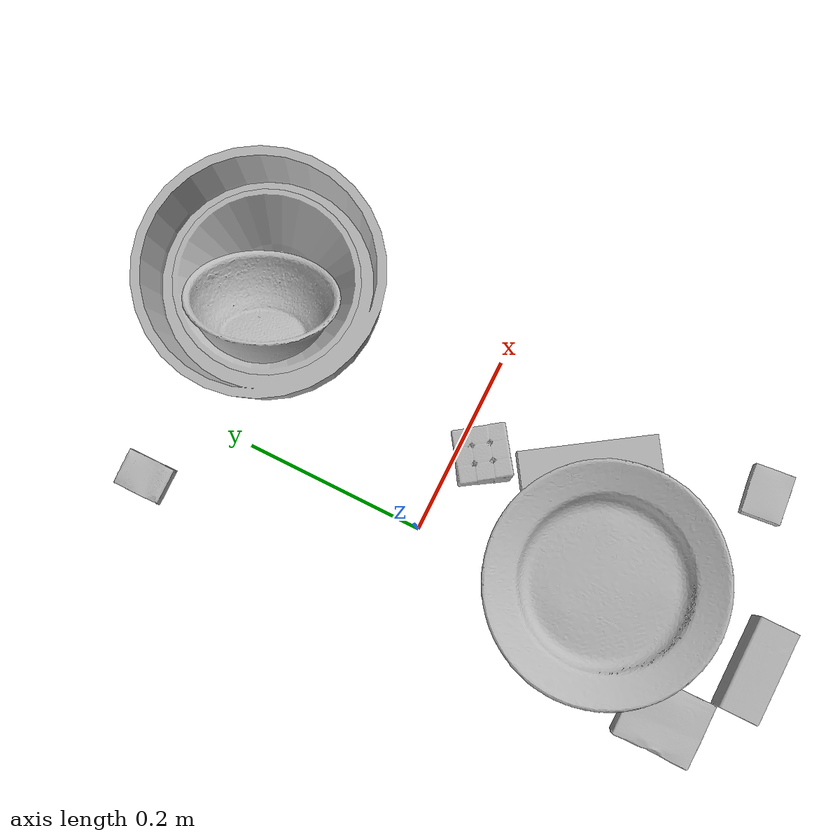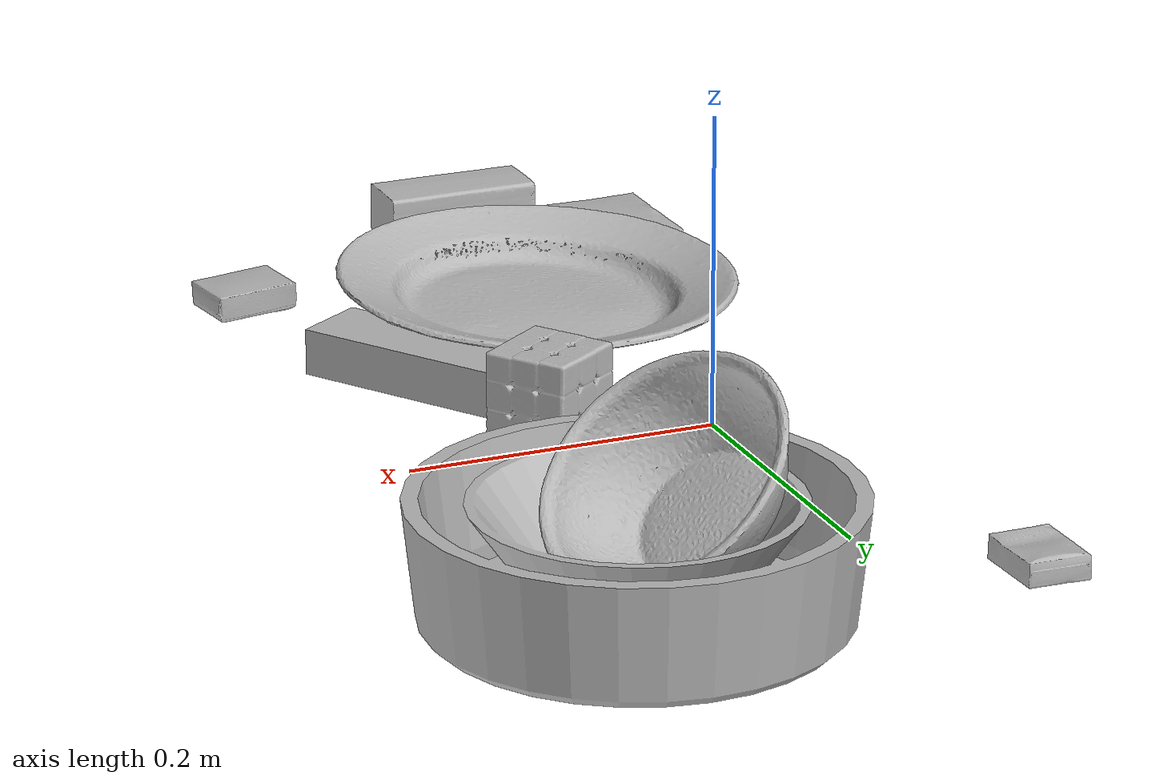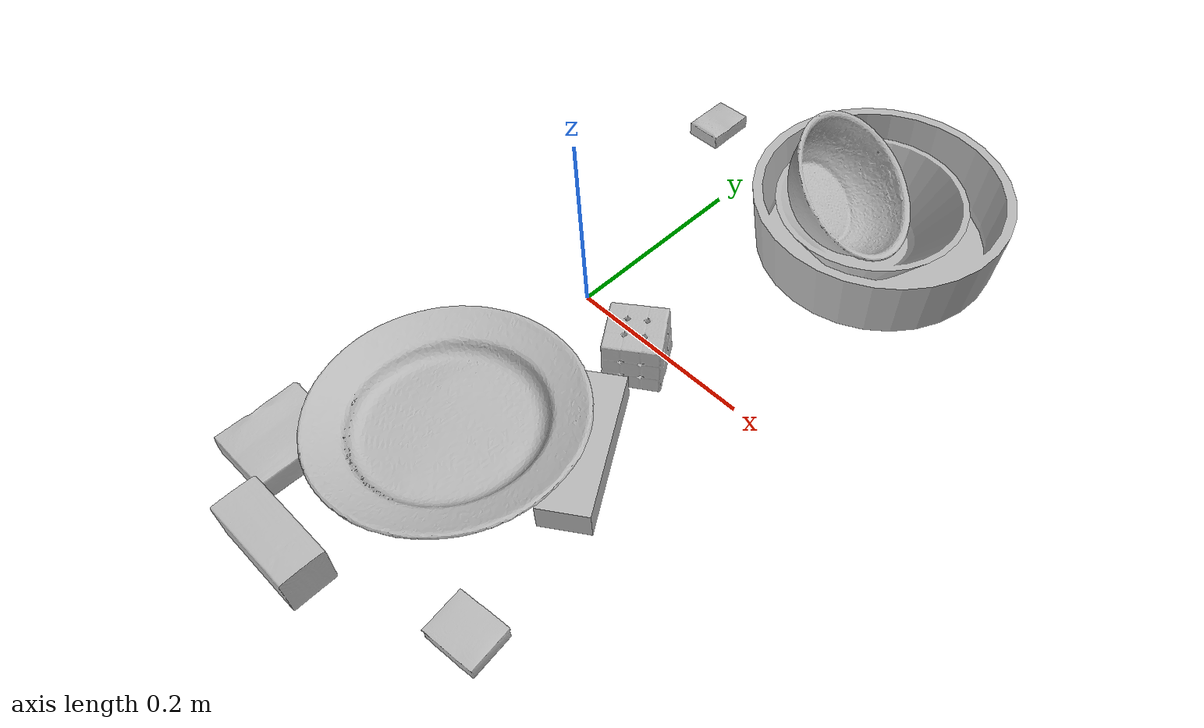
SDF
<sdf version="1.4">
  <world name="default">
    <light name="light1" type="point">
      <pose>0 0 1 0 0 0</pose>
      <diffuse>3 3 3 1</diffuse>
      <specular>3 3 3 1</specular>
    </light>
    <light name="light2" type="point">
      <pose>0 0.5 2 0 0 0</pose>
      <diffuse>1 1 1 1</diffuse>
      <specular>1 1 1 1</specular>
    </light>
    <light name="light3" type="point">
      <pose>0 0.5 2 0 0 0</pose>
      <diffuse>3 3 3 1</diffuse>
      <specular>3 3 3 1</specular>
    </light>
    <scene>
      <ambient>0.7 0.7 0.7</ambient>
    </scene>
    <model name="box1">
      <link name="link_box1">
        <collision name="default">
          <geometry>
            <mesh>
              <uri>model://pudding_box/collision_meshes/collision.obj</uri>
              <scale>0.5 0.5 0.5</scale>
            </mesh>
          </geometry>
          <surface>
            <friction>
              <ode>
                <mu>0.5</mu>
                <mu2>0.5</mu2>
              </ode>
            </friction>
          <contact>
        <ode>
            <max_vel>0</max_vel>
            <min_depth>0.0001</min_depth>
            <kp>1e8</kp>
        </ode>
    </contact></surface>
        </collision>
        <visual name="default">
          <geometry>
            <mesh>
              <uri>model://pudding_box/visual_meshes/visual.dae</uri>
              <scale>0.5 0.5 0.5</scale>
            </mesh>
          </geometry>
        </visual>
        <inertial>
          <mass>0.06043573096394539</mass>
          <pose>0.0002447410661261529 0.00040339428232982755 -0.0002594413817860186 0.005213102238104987 -0.006603800125102895 0.020079827017580043</pose>
          <inertia>
            <ixx>1.707987e-05</ixx>
            <iyy>1.1491458e-05</iyy>
            <izz>2.522289e-05</izz>
            <ixy>0</ixy>
            <ixz>0</ixz>
            <iyz>0</iyz>
          </inertia>
        </inertial>
      </link>
      <pose>0.19646835327148438 -0.31480005383491516 0.009862907230854034 0.022348466089731477 -0.01139175818973825 1.679891521976256</pose>
    </model>
    <model name="box11">
      <link name="link_box11">
        <collision name="default">
          <geometry>
            <mesh>
              <uri>model://wood_block/collision_meshes/collision.obj</uri>
              <scale>0.5 0.5 0.5</scale>
            </mesh>
          </geometry>
          <surface>
            <friction>
              <ode>
                <mu>0.5</mu>
                <mu2>0.5</mu2>
              </ode>
            </friction>
          <contact>
        <ode>
            <max_vel>0</max_vel>
            <min_depth>0.0001</min_depth>
            <kp>1e8</kp>
        </ode>
    </contact></surface>
        </collision>
        <visual name="default">
          <geometry>
            <mesh>
              <uri>model://wood_block/visual_meshes/visual.dae</uri>
              <scale>0.5 0.5 0.5</scale>
            </mesh>
          </geometry>
        </visual>
        <inertial>
          <mass>0.22556793689727783</mass>
          <pose>-2.9066577553749084e-06 -0.000285404734313488 0.00013204290007706732 -0.05220975528916272 -0.005192696013017626 -0.0068613779154948285</pose>
          <inertia>
            <ixx>7.5461e-05</ixx>
            <iyy>0.00023838133</iyy>
            <izz>0.00023748967</izz>
            <ixy>0</ixy>
            <ixz>0</ixz>
            <iyz>0</iyz>
          </inertia>
        </inertial>
      </link>
      <pose>0.024619149044156075 -0.37781691551208496 0.022629262879490852 -0.005208531390253412 0.005718745610887126 -3.136967939436268</pose>
    </model>
    <model name="box2">
      <link name="link_box2">
        <collision name="default">
          <geometry>
            <mesh>
              <uri>model://jenga/collision_meshes/collision.obj</uri>
              <scale>1.0 1.0 1.0</scale>
            </mesh>
          </geometry>
          <surface>
            <friction>
              <ode>
                <mu>0.5</mu>
                <mu2>0.5</mu2>
              </ode>
            </friction>
          <contact>
        <ode>
            <max_vel>0</max_vel>
            <min_depth>0.0001</min_depth>
            <kp>1e8</kp>
        </ode>
    </contact></surface>
        </collision>
        <visual name="default">
          <geometry>
            <mesh>
              <uri>model://jenga/visual_meshes/visual.dae</uri>
              <scale>1.0 1.0 1.0</scale>
            </mesh>
          </geometry>
        </visual>
        <inertial>
          <mass>0.2534179985523224</mass>
          <pose>-2.502856091268768e-07 -0.00010250010382151231 -4.0923401684267446e-05 0.0 -7.342154049184251e-07 0.0</pose>
          <inertia>
            <ixx>7.012692e-05</ixx>
            <iyy>0.00047517804</iyy>
            <izz>0.000507293</izz>
            <ixy>0</ixy>
            <ixz>0</ixz>
            <iyz>0</iyz>
          </inertia>
        </inertial>
      </link>
      <pose>0.13863782584667206 -0.13336753845214844 0.014999830164015293 -2.111125940131901e-05 1.1636111962023903e-07 -0.988240239857482</pose>
    </model>
    <model name="box21">
      <link name="link_box21">
        <collision name="default">
          <geometry>
            <mesh>
              <uri>model://cracker_box/collision_meshes/collision.obj</uri>
              <scale>0.25 0.25 0.25</scale>
            </mesh>
          </geometry>
          <surface>
            <friction>
              <ode>
                <mu>0.5</mu>
                <mu2>0.5</mu2>
              </ode>
            </friction>
          <contact>
        <ode>
            <max_vel>0</max_vel>
            <min_depth>0.0001</min_depth>
            <kp>1e8</kp>
        </ode>
    </contact></surface>
        </collision>
        <visual name="default">
          <geometry>
            <mesh>
              <uri>model://cracker_box/visual_meshes/visual.dae</uri>
              <scale>0.25 0.25 0.25</scale>
            </mesh>
          </geometry>
        </visual>
        <inertial>
          <mass>0.04045860841870308</mass>
          <pose>0.0002366030093980953 6.358561950037256e-05 -0.0004257383698131889 -0.0003162076898946344 -0.011106488668808423 0.0025467959335197018</pose>
          <inertia>
            <ixx>6.4317906e-06</ixx>
            <iyy>1.062015e-05</iyy>
            <izz>1.5155927e-05</izz>
            <ixy>0</ixy>
            <ixz>0</ixz>
            <iyz>0</iyz>
          </inertia>
        </inertial>
      </link>
      <pose>-0.07954631745815277 0.2853996455669403 0.009096028283238411 -0.014050569513327914 -0.005016580936899283 1.5709725450814114</pose>
    </model>
    <model name="box3">
      <link name="link_box3">
        <collision name="default">
          <geometry>
            <mesh>
              <uri>model://rubiks_cube/collision_meshes/collision.obj</uri>
              <scale>1.0 1.0 1.0</scale>
            </mesh>
          </geometry>
          <surface>
            <friction>
              <ode>
                <mu>0.5</mu>
                <mu2>0.5</mu2>
              </ode>
            </friction>
          <contact>
        <ode>
            <max_vel>0</max_vel>
            <min_depth>0.0001</min_depth>
            <kp>1e8</kp>
        </ode>
    </contact></surface>
        </collision>
        <visual name="default">
          <geometry>
            <mesh>
              <uri>model://rubiks_cube/visual_meshes/visual.dae</uri>
              <scale>1.0 1.0 1.0</scale>
            </mesh>
          </geometry>
        </visual>
        <inertial>
          <mass>0.12779320776462555</mass>
          <pose>2.6721041649580002e-05 5.2569666877388954e-05 -7.264316082000732e-06 -0.054672129212199855 -0.09814057073985563 -0.03445704008669109</pose>
          <inertia>
            <ixx>7.061434e-05</ixx>
            <iyy>7.0285016e-05</iyy>
            <izz>7.119949e-05</izz>
            <ixy>0</ixy>
            <ixz>0</ixz>
            <iyz>0</iyz>
          </inertia>
        </inertial>
      </link>
      <pose>0.09788204729557037 -0.025884011760354042 0.028678975999355316 -3.0007372070987915e-06 -8.523181530812388e-07 -0.9615336558376729</pose>
    </model>
    <model name="box31">
      <link name="link_box31">
        <collision name="default">
          <geometry>
            <mesh>
              <uri>model://gelatin_box/collision_meshes/collision.obj</uri>
              <scale>1.0 1.0 1.0</scale>
            </mesh>
          </geometry>
          <surface>
            <friction>
              <ode>
                <mu>0.5</mu>
                <mu2>0.5</mu2>
              </ode>
            </friction>
          <contact>
        <ode>
            <max_vel>0</max_vel>
            <min_depth>0.0001</min_depth>
            <kp>1e8</kp>
        </ode>
    </contact></surface>
        </collision>
        <visual name="default">
          <geometry>
            <mesh>
              <uri>model://gelatin_box/visual_meshes/visual.dae</uri>
              <scale>1.0 1.0 1.0</scale>
            </mesh>
          </geometry>
        </visual>
        <inertial>
          <mass>0.20050984621047974</mass>
          <pose>0.0004319618456065655 0.00011156872642459348 -0.00036403213744051754 -0.0010503720853528096 -0.004755817758068365 0.016440559471334753</pose>
          <inertia>
            <ixx>0.00014154361</ixx>
            <iyy>0.00010110386</iyy>
            <izz>0.0002154609</izz>
            <ixy>0</ixy>
            <ixz>0</ixz>
            <iyz>0</iyz>
          </inertia>
        </inertial>
      </link>
      <pose>-0.06362872570753098 -0.3148610591888428 0.015168371610343456 0.005585121806370587 -0.007291739285324817 3.140468566109097</pose>
    </model>
    <model name="plate1">
      <link name="link_plate1">
        <collision name="default">
          <geometry>
            <mesh>
              <uri>model://pan_tefal/collision_meshes/collision.obj</uri>
              <scale>1.0 1.0 1.0</scale>
            </mesh>
          </geometry>
          <surface>
            <friction>
              <ode>
                <mu>0.5</mu>
                <mu2>0.5</mu2>
              </ode>
            </friction>
          <contact>
        <ode>
            <max_vel>0</max_vel>
            <min_depth>0.0001</min_depth>
            <kp>1e8</kp>
        </ode>
    </contact></surface>
        </collision>
        <visual name="default">
          <geometry>
            <mesh>
              <uri>model://pan_tefal/visual_meshes/visual.dae</uri>
              <scale>1.0 1.0 1.0</scale>
            </mesh>
          </geometry>
        </visual>
        <inertial>
          <mass>0.9166961908340454</mass>
          <pose>-0.00018002631259150803 3.279098018538207e-05 -0.00851493515074253 0.0008190256602529888 -0.0003301357182707761 -0.33185348708971</pose>
          <inertia>
            <ixx>0.006327908</ixx>
            <iyy>0.006368705</iyy>
            <izz>0.01164846</izz>
            <ixy>0</ixy>
            <ixz>0</ixz>
            <iyz>0</iyz>
          </inertia>
        </inertial>
      </link>
      <pose>0.16288606822490692 0.2632300555706024 0.03792249411344528 -0.0007429334751207379 -0.0007274763358808824 1.7184153559588529</pose>
    </model>
    <model name="bowl1">
      <link name="link_bowl1">
        <collision name="default">
          <geometry>
            <mesh>
              <uri>model://bowl_a/collision_meshes/collision.obj</uri>
              <scale>1.0 1.0 1.0</scale>
            </mesh>
          </geometry>
          <surface>
            <friction>
              <ode>
                <mu>0.5</mu>
                <mu2>0.5</mu2>
              </ode>
            </friction>
          <contact>
        <ode>
            <max_vel>0</max_vel>
            <min_depth>0.0001</min_depth>
            <kp>1e8</kp>
        </ode>
    </contact></surface>
        </collision>
        <visual name="default">
          <geometry>
            <mesh>
              <uri>model://bowl_a/visual_meshes/visual.dae</uri>
              <scale>1.0 1.0 1.0</scale>
            </mesh>
          </geometry>
        </visual>
        <inertial>
          <mass>0.44606471061706543</mass>
          <pose>0.0002786746481433511 4.7312179958680645e-05 -0.0013765294570475817 -0.0009805488171165768 -0.0010938123304380014 -0.19122487556540352</pose>
          <inertia>
            <ixx>0.0012699668</ixx>
            <iyy>0.001277764</iyy>
            <izz>0.0022586845</izz>
            <ixy>0</ixy>
            <ixz>0</ixz>
            <iyz>0</iyz>
          </inertia>
        </inertial>
      </link>
      <pose>0.15790070593357086 0.25231242179870605 0.037956755608320236 0.0004873808943792801 -0.0013446796684400306 0.5031623758128595</pose>
    </model>
    <model name="plate2">
      <link name="link_plate2">
        <collision name="default">
          <geometry>
            <mesh>
              <uri>model://plate/collision_meshes/collision.obj</uri>
              <scale>1.0 1.0 1.0</scale>
            </mesh>
          </geometry>
          <surface>
            <friction>
              <ode>
                <mu>0.5</mu>
                <mu2>0.5</mu2>
              </ode>
            </friction>
          <contact>
        <ode>
            <max_vel>0</max_vel>
            <min_depth>0.0001</min_depth>
            <kp>1e8</kp>
        </ode>
    </contact></surface>
        </collision>
        <visual name="default">
          <geometry>
            <mesh>
              <uri>model://plate/visual_meshes/visual.dae</uri>
              <scale>1.0 1.0 1.0</scale>
            </mesh>
          </geometry>
        </visual>
        <inertial>
          <mass>0.10088177025318146</mass>
          <pose>-0.0006044645560905337 0.0002782582596410066 -0.0010561994276940823 0.002218810424575964 -0.003225458488037908 0.4526011088858205</pose>
          <inertia>
            <ixx>0.00047192685</ixx>
            <iyy>0.00046741302</iyy>
            <izz>0.00092301855</izz>
            <ixy>0</ixy>
            <ixz>0</ixz>
            <iyz>0</iyz>
          </inertia>
        </inertial>
      </link>
      <pose>0.03531896695494652 -0.20116958022117615 0.02771196886897087 0.02064800541952381 0.04364233844691159 2.825852148523102</pose>
    </model>
    <model name="bowl2">
      <link name="link_bowl2">
        <collision name="default">
          <geometry>
            <mesh>
              <uri>model://bowl/collision_meshes/collision.obj</uri>
              <scale>1.0 1.0 1.0</scale>
            </mesh>
          </geometry>
          <surface>
            <friction>
              <ode>
                <mu>0.5</mu>
                <mu2>0.5</mu2>
              </ode>
            </friction>
          <contact>
        <ode>
            <max_vel>0</max_vel>
            <min_depth>0.0001</min_depth>
            <kp>1e8</kp>
        </ode>
    </contact></surface>
        </collision>
        <visual name="default">
          <geometry>
            <mesh>
              <uri>model://bowl/visual_meshes/visual.dae</uri>
              <scale>1.0 1.0 1.0</scale>
            </mesh>
          </geometry>
        </visual>
        <inertial>
          <mass>0.10570208728313446</mass>
          <pose>0.00020445376867428422 -0.00103021040558815 -0.000804263399913907 -0.015764090239829616 0.014546785988443214 0.7140402180265782</pose>
          <inertia>
            <ixx>0.00024280604</ixx>
            <iyy>0.0002373808</iyy>
            <izz>0.0004084832</izz>
            <ixy>0</ixy>
            <ixz>0</ixz>
            <iyz>0</iyz>
          </inertia>
        </inertial>
      </link>
      <pose>0.12462866306304932 0.24096539616584778 0.06270194053649902 0.25612053737971274 -0.6960330877442886 3.0947659101246052</pose>
    </model>
  <physics type="ode">
      <max_contacts>50</max_contacts>
      <ode>
        <solver>
          <type>quick</type>
          <iters>75</iters>
        </solver>
        <constraints>
          <contact_max_correcting_vel>0</contact_max_correcting_vel>
          <contact_surface_layer>0</contact_surface_layer>
        </constraints>
      </ode>
    </physics></world>
</sdf>
